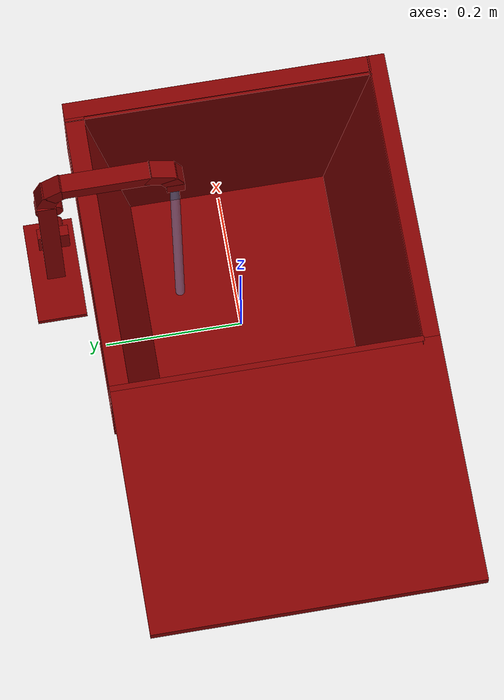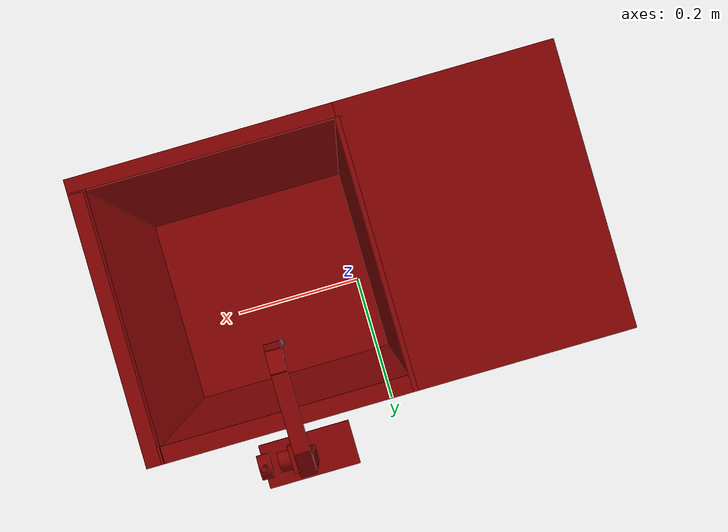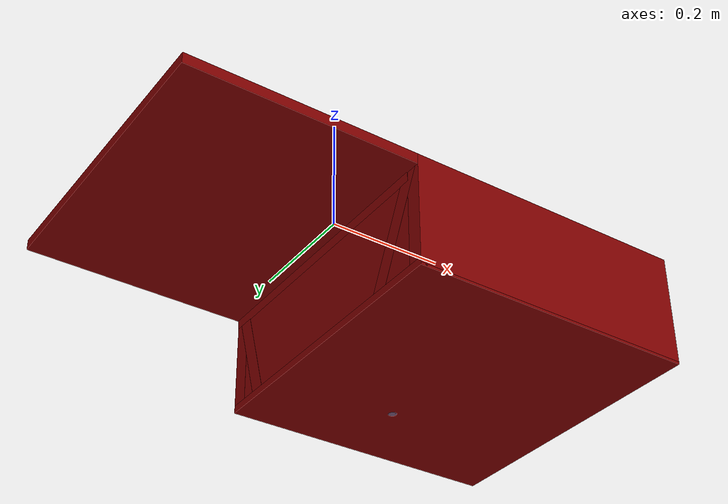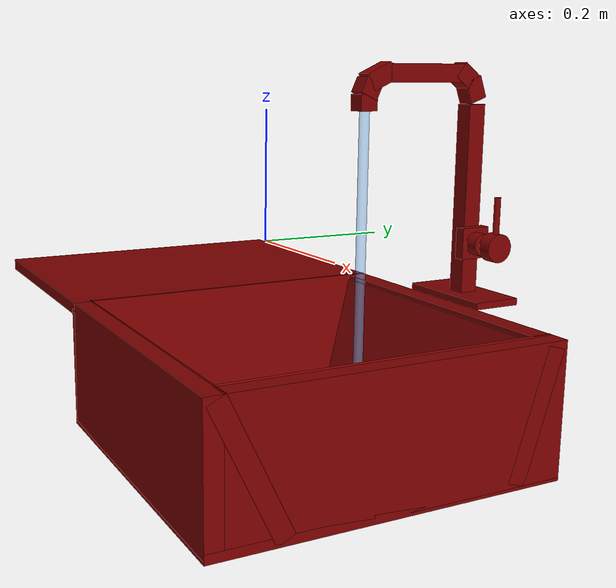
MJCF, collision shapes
<?xml version='1.0' encoding='UTF-8'?>
<mujoco model="model">
  <option timestep="0.002" gravity="0.0 0.0 -9.81"/>
  <compiler angle="radian"/>
  <asset>
    <mesh file="visuals/handle.obj" name="handle_vis"/>
    <mesh file="visuals/Body001.obj" name="Body001_vis"/>
    <mesh file="visuals/Body002.obj" name="Body002_vis"/>
    <mesh file="visuals/spout.obj" name="spout_vis"/>
    <texture file="visuals/T_BC001.png" name="Body001_material" type="2d"/>
    <material name="Body001_material" rgba="1 1 1 1.0" texture="Body001_material" shininess="0.2512328028678894" specular="1"/>
    <texture file="visuals/T_BC001.png" name="handle_material" type="2d"/>
    <material name="handle_material" rgba="1 1 1 1.0" texture="handle_material" shininess="0.2512328028678894" specular="1"/>
    <texture file="visuals/T_BC001.png" name="Body002_material" type="2d"/>
    <material name="Body002_material" rgba="1 1 1 1.0" texture="Body002_material" shininess="0.2512328028678894" specular="1"/>
    <texture file="visuals/T_BC001.png" name="spout_material" type="2d"/>
    <material name="spout_material" rgba="1 1 1 1.0" texture="spout_material" shininess="0.2512328028678894" specular="1"/>
  </asset>
  <default>
    <default class="visual">
      <geom conaffinity="0" contype="0" group="1" type="mesh"/>
    </default>
    <default class="collision">
      <geom group="0" rgba="0.5 0 0 0.5" solimp="0.998 0.998 0.001" solref="0.001 2"/>
    </default>
    <default class="spawn">
      <geom group="0" rgba="1 1 1 0.5" contype="0" conaffinity="0"/>
      <site group="0" rgba="1 1 1 0.5"/>
    </default>
    <default class="region">
      <geom group="1" conaffinity="0" contype="0" rgba="0 1 0 0"/>
    </default>
  </default>
  <worldbody>
    <body>
      <body name="object">
        <geom mesh="Body001_vis" type="mesh" solimp="0.998 0.998 0.001" solref="0.001 1" friction="0.95 0.3 0.1" class="visual" material="Body001_material"/>
        <geom class="collision" type="box" pos="-0.23235312 -0.04398802 -0.08550620" size="0.19171245396137238 0.25008624792099 0.008922670036554337" quat="1.0 0.0 0.0 0.0"/>
        <geom class="collision" type="box" pos="0.18621181 -0.28122219 -0.16877924" size="0.23785293102264404 0.012852070853114128 0.09219254553318024" quat="1.0 0.0 0.0 0.0"/>
        <geom class="collision" type="box" pos="0.18621021 -0.23592900 -0.17035191" size="0.237855464220047 0.013186854310333729 0.09803538769483566" quat="0.9749208688735962 0.22255180776119232 4.9416421612240565e-17 3.913559855615428e-24"/>
        <geom class="collision" type="box" pos="0.18621159 0.19120166 -0.16877924" size="0.2378532439470291 0.014896607957780361 0.09219282120466232" quat="1.0 0.0 0.0 0.0"/>
        <geom class="collision" type="box" pos="0.18621011 0.16278407 -0.17131995" size="0.23785558342933655 0.013186870142817497 0.09071974456310272" quat="0.98871910572052 -0.1497815102338791 3.325823251323787e-17 2.2769647641710813e-24"/>
        <geom class="collision" type="box" pos="-0.03667412 -0.03174193 -0.16825599" size="0.008724217303097248 0.23784026503562927 0.09216950088739395" quat="0.9986517429351807 -5.775459210744373e-16 -0.0519103929400444 -6.974626653999394e-09"/>
        <geom class="collision" type="box" pos="0.41108216 -0.03174079 -0.16877924" size="0.012983438558876514 0.23783856630325317 0.0921933725476265" quat="1.0 0.0 0.0 0.0"/>
        <geom class="collision" type="box" pos="0.36272947 -0.03174191 -0.16972544" size="0.013186951167881489 0.23784026503562927 0.09741795808076859" quat="0.97537761926651 -5.9184724653170255e-15 0.22054137289524078 2.9631680220632006e-08"/>
        <geom class="collision" type="box" pos="-0.04608329 -0.04398798 -0.17755565" size="0.005442608613520861 0.2500862777233124 0.08596532791852951" quat="1.0 0.0 0.0 0.0"/>
        <geom class="collision" type="box" pos="0.18620932 -0.04398799 -0.25888333" size="0.23785634338855743 0.2500862777233124 0.006392284296452999" quat="1.0 0.0 0.0 0.0"/>
        <body name="handle">
          <joint axis="1.0 0.0 0.0" pos="0.22516976 0.25128743 0.00564991" limited="true" name="handle_temp_joint" type="hinge" range="-0.7853981633974483 0.7853981633974483" damping="0.5" frictionloss="1" armature="2"/>
          <joint axis="0.0 1.0 0.0" pos="0.22516976 0.25128743 0.00564991" limited="true" name="handle_joint" type="hinge" range="0 0.5" damping="0.5" frictionloss="1" armature="2"/>
          <geom mesh="handle_vis" type="mesh" solimp="0.998 0.998 0.001" solref="0.001 1" friction="0.95 0.3 0.1" class="visual" material="handle_material"/>
          <geom name="handle_main" class="collision" type="cylinder" pos="0.22955200 0.25196538 0.04879456" size="0.004608677700161934 0.0299918744713068" quat="1.0 0.0 0.0 0.0"/>
          <geom class="collision" type="cylinder" pos="0.22913901 0.25196538 0.00609603" size="0.020698385313153267 0.010021992959082127" quat="0.7071068286895752 -4.750302551315144e-08 0.7071067094802856 4.7503014855010406e-08"/>
        </body>
        <body name="Body002">
          <geom mesh="Body002_vis" type="mesh" solimp="0.998 0.998 0.001" solref="0.001 1" friction="0.95 0.3 0.1" class="visual" material="Body002_material"/>
          <geom class="collision" type="box" pos="0.15715620 0.25716940 -0.07659664" size="0.07770398259162903 0.03695625439286232 0.005091219209134579" quat="1.0 0.0 0.0 0.0"/>
          <geom class="collision" type="box" pos="0.15712187 0.25673700 0.06816976" size="0.013505566865205765 0.01369401067495346 0.13990825414657593" quat="1.0 0.0 0.0 0.0"/>
          <geom class="collision" type="box" pos="0.17813329 0.25236067 0.00635148" size="0.007939639501273632 0.023168575018644333 0.023161763325333595" quat="1.0 0.0 0.0 0.0"/>
          <geom class="collision" type="cylinder" pos="0.19554503 0.25196538 0.00609603" size="0.01662694849073887 0.010399351827800274" quat="0.7071068286895752 -4.750302551315144e-08 0.7071067094802856 4.7503014855010406e-08"/>
        </body>
        <body name="spout">
          <joint axis="0.0 0.0 1.0" pos="0.15712346 0.25690109 0.23254797" limited="true" name="spout_joint" range="-0.7853981633974483 0.7853981633974483" type="hinge" damping="10"/>
          <site type="cylinder" rgba="0.5 0.75 1 0.5" size="0.007166864350438118 0.24700188636779785" pos="0.15770000 0.07001802 -0.01827375" name="water"/>
          <geom mesh="spout_vis" type="mesh" solimp="0.998 0.998 0.001" solref="0.001 1" friction="0.95 0.3 0.1" class="visual" material="spout_material"/>
          <geom class="collision" type="box" pos="0.15701963 0.25324080 0.22889165" size="0.01324722170829773 0.01373068243265152 0.016411205753684044" quat="0.9848077297210693 0.17364826798439026 0.0 0.0"/>
          <geom class="collision" type="box" pos="0.15701963 0.16865230 0.25220251" size="0.01324722170829773 0.0636536106467247 0.013066796585917473" quat="1.0 0.0 0.0 0.0" name="spout_main"/>
          <geom class="collision" type="box" pos="0.15701963 0.23814973 0.24778129" size="0.01324722170829773 0.013172360137104988 0.015646377578377724" quat="0.8965427279472351 0.4429572522640228 0.0 0.0"/>
          <geom class="collision" type="box" pos="0.15682848 0.06971426 0.21193272" size="0.013303152285516262 0.013185113668441772 0.011416430585086346" quat="1.0 0.0 0.0 0.0"/>
          <geom class="collision" type="box" pos="0.15696077 0.07384312 0.23108658" size="0.013303152285516262 0.013744930736720562 0.011416427791118622" quat="0.21372148394584656 0.9768946170806885 0.0 0.0"/>
          <geom class="collision" type="box" pos="0.15701963 0.09089816 0.24756565" size="0.01324722170829773 0.013165219686925411 0.019625896587967873" quat="0.539652943611145 0.8418875932693481 0.0 0.0"/>
        </body>
        <geom class="region" name="reg_basin" type="box" pos="0.14481617500000002 -0.028966374999999996 -0.16471791" size="0.159644225 0.147796385 0.08356832"/>
        <geom class="region" name="reg_main" type="box" pos="-4.000000000670134e-08 -0.043988005 -0.170922925" size="0.42506562000000003 0.251086305 0.09535268499999999"/>
      </body>
    </body>
  </worldbody>
  <actuator>
    <motor name="handle_joint_actuator" joint="handle_joint" gear="10"/>
    <motor name="handle_temp_joint_actuator" joint="handle_temp_joint" gear="10"/>
    <motor name="spout_joint_actuator" joint="spout_joint" gear="10"/>
  </actuator>
</mujoco>
